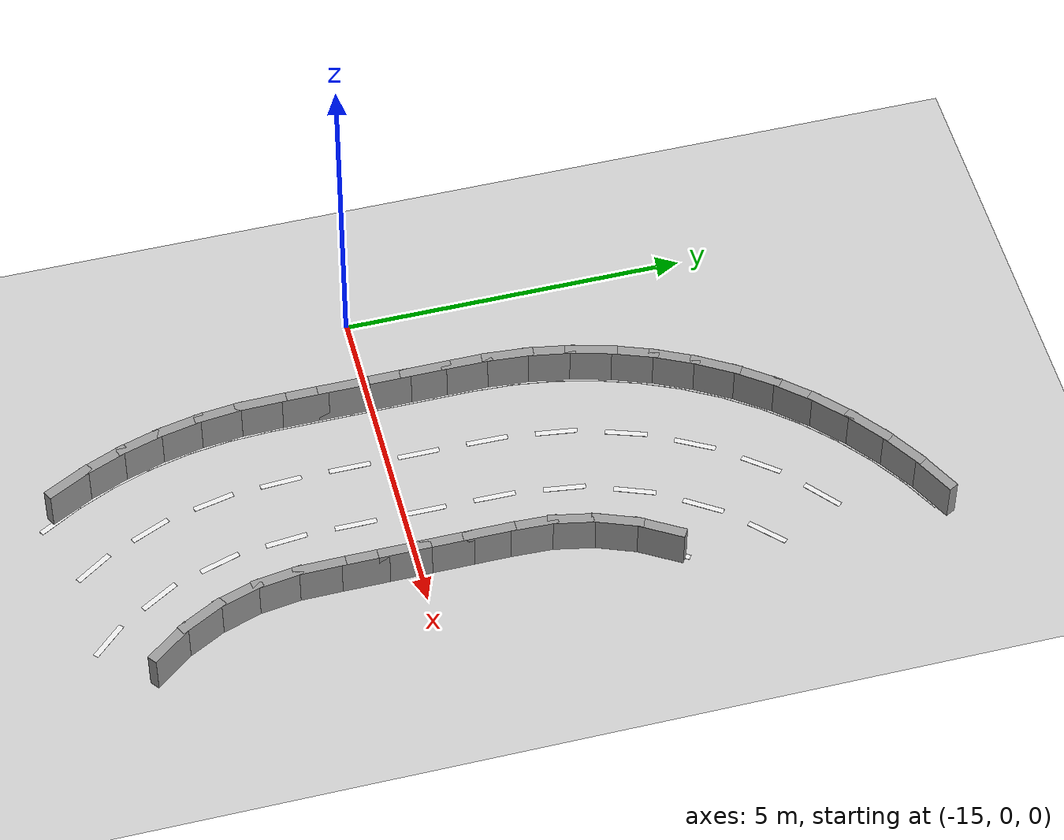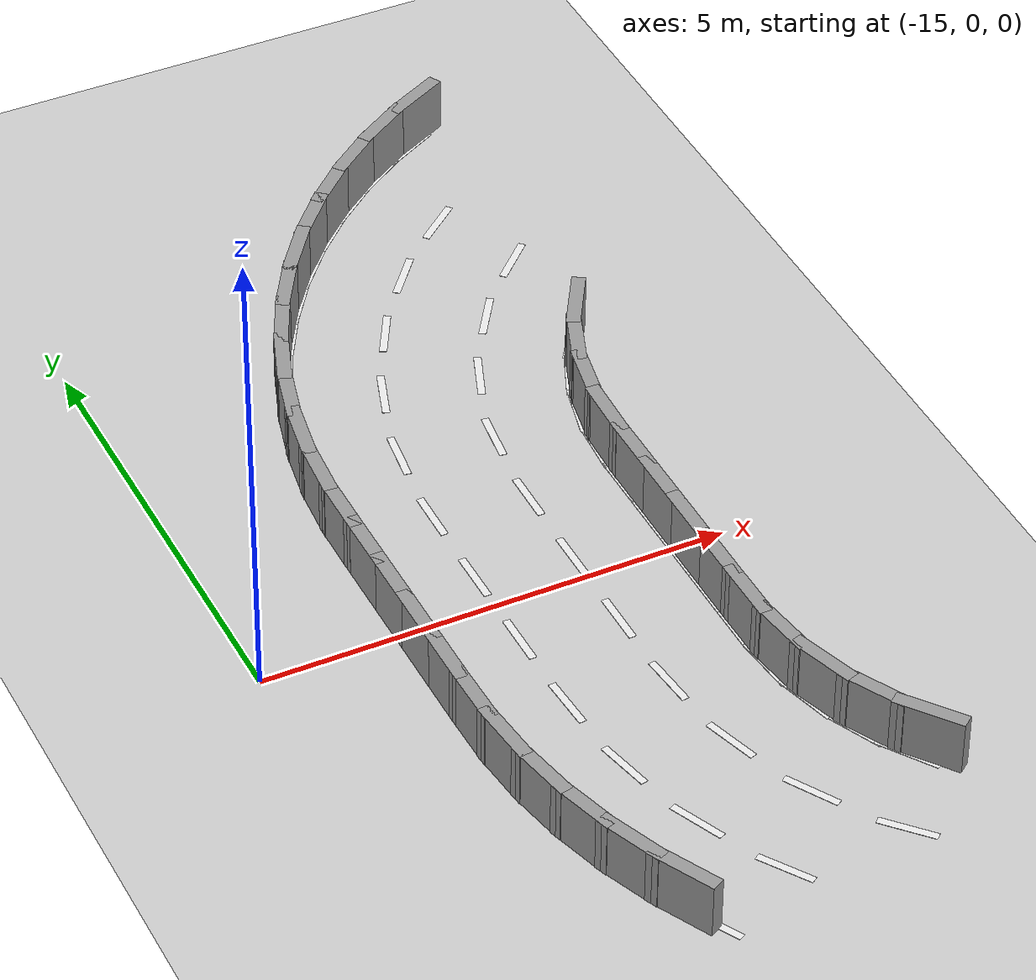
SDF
<sdf version="1.7">
 <world name="default">
  <model name="ground_plane">
   <static>1</static>
   <link name="link">
    <collision name="collision">
     <geometry><plane><normal>0 0 1</normal><size>100 100</size></plane></geometry>
     <surface><friction><ode><mu>100</mu><mu2>50</mu2></ode></friction></surface>
    </collision>
    <visual name="visual">
     <cast_shadows>0</cast_shadows>
     <geometry><plane><normal>0 0 1</normal><size>100 100</size></plane></geometry>
     <material>
      <script><uri>file://media/materials/scripts/gazebo.material</uri><name>Gazebo/Grey</name></script>
     </material>
    </visual>
   </link>
  </model>
  <model name="superspeedway">
   <link name="Wall_38">
    <collision name="Wall_38_Collision">
     <geometry><box><size>0.7493 0.1500 0.6000</size></box></geometry>
     <pose>0 0 0.3000 0 -0 0</pose>
    </collision>
    <visual name="Wall_38_Visual">
     <pose>0 0 0.3000 0 -0 0</pose>
     <geometry><box><size>0.7493 0.1500 0.6000</size></box></geometry>
     <material>
      <script><uri>file://media/materials/scripts/gazebo.material</uri><name>Gazebo/Grey</name></script>
      <ambient>1 1 1 1</ambient>
     </material>
    </visual>
    <pose>-9.9881 3.2976 0 0 -0 -2.11240</pose>
   </link>
   <link name="Wall_39">
    <collision name="Wall_39_Collision">
     <geometry><box><size>0.7493 0.1500 0.6000</size></box></geometry>
     <pose>0 0 0.3000 0 -0 0</pose>
    </collision>
    <visual name="Wall_39_Visual">
     <pose>0 0 0.3000 0 -0 0</pose>
     <geometry><box><size>0.7493 0.1500 0.6000</size></box></geometry>
     <material>
      <script><uri>file://media/materials/scripts/gazebo.material</uri><name>Gazebo/Grey</name></script>
      <ambient>1 1 1 1</ambient>
     </material>
    </visual>
    <pose>-10.2509 2.7616 0 0 -0 -1.94097</pose>
   </link>
   <link name="Wall_40">
    <collision name="Wall_40_Collision">
     <geometry><box><size>0.7493 0.1500 0.6000</size></box></geometry>
     <pose>0 0 0.3000 0 -0 0</pose>
    </collision>
    <visual name="Wall_40_Visual">
     <pose>0 0 0.3000 0 -0 0</pose>
     <geometry><box><size>0.7493 0.1500 0.6000</size></box></geometry>
     <material>
      <script><uri>file://media/materials/scripts/gazebo.material</uri><name>Gazebo/Grey</name></script>
      <ambient>1 1 1 1</ambient>
     </material>
    </visual>
    <pose>-10.4185 2.1885 0 0 -0 -1.76954</pose>
   </link>
   <link name="Wall_41">
    <collision name="Wall_41_Collision">
     <geometry><box><size>0.7496 0.1500 0.6000</size></box></geometry>
     <pose>0 0 0.3000 0 -0 0</pose>
    </collision>
    <visual name="Wall_41_Visual">
     <pose>0 0 0.3000 0 -0 0</pose>
     <geometry><box><size>0.7496 0.1500 0.6000</size></box></geometry>
     <material>
      <script><uri>file://media/materials/scripts/gazebo.material</uri><name>Gazebo/Grey</name></script>
      <ambient>1 1 1 1</ambient>
     </material>
    </visual>
    <pose>-10.4888 1.5952 0 0 -0 -1.60806</pose>
   </link>
   <link name="Wall_42">
    <collision name="Wall_42_Collision">
     <geometry><box><size>0.7500 0.1500 0.6000</size></box></geometry>
     <pose>0 0 0.3000 0 -0 0</pose>
    </collision>
    <visual name="Wall_42_Visual">
     <pose>0 0 0.3000 0 -0 0</pose>
     <geometry><box><size>0.7500 0.1500 0.6000</size></box></geometry>
     <material>
      <script><uri>file://media/materials/scripts/gazebo.material</uri><name>Gazebo/Grey</name></script>
      <ambient>1 1 1 1</ambient>
     </material>
    </visual>
    <pose>-10.5000 0.9956 0 0 -0 -1.57080</pose>
   </link>
   <link name="Wall_43">
    <collision name="Wall_43_Collision">
     <geometry><box><size>0.7500 0.1500 0.6000</size></box></geometry>
     <pose>0 0 0.3000 0 -0 0</pose>
    </collision>
    <visual name="Wall_43_Visual">
     <pose>0 0 0.3000 0 -0 0</pose>
     <geometry><box><size>0.7500 0.1500 0.6000</size></box></geometry>
     <material>
      <script><uri>file://media/materials/scripts/gazebo.material</uri><name>Gazebo/Grey</name></script>
      <ambient>1 1 1 1</ambient>
     </material>
    </visual>
    <pose>-10.5000 0.3956 0 0 -0 -1.57080</pose>
   </link>
   <link name="Wall_44">
    <collision name="Wall_44_Collision">
     <geometry><box><size>0.7500 0.1500 0.6000</size></box></geometry>
     <pose>0 0 0.3000 0 -0 0</pose>
    </collision>
    <visual name="Wall_44_Visual">
     <pose>0 0 0.3000 0 -0 0</pose>
     <geometry><box><size>0.7500 0.1500 0.6000</size></box></geometry>
     <material>
      <script><uri>file://media/materials/scripts/gazebo.material</uri><name>Gazebo/Grey</name></script>
      <ambient>1 1 1 1</ambient>
     </material>
    </visual>
    <pose>-10.5000 -0.2044 0 0 -0 -1.57080</pose>
   </link>
   <link name="Wall_45">
    <collision name="Wall_45_Collision">
     <geometry><box><size>0.7500 0.1500 0.6000</size></box></geometry>
     <pose>0 0 0.3000 0 -0 0</pose>
    </collision>
    <visual name="Wall_45_Visual">
     <pose>0 0 0.3000 0 -0 0</pose>
     <geometry><box><size>0.7500 0.1500 0.6000</size></box></geometry>
     <material>
      <script><uri>file://media/materials/scripts/gazebo.material</uri><name>Gazebo/Grey</name></script>
      <ambient>1 1 1 1</ambient>
     </material>
    </visual>
    <pose>-10.5000 -0.8044 0 0 -0 -1.57080</pose>
   </link>
   <link name="Wall_46">
    <collision name="Wall_46_Collision">
     <geometry><box><size>0.7499 0.1500 0.6000</size></box></geometry>
     <pose>0 0 0.3000 0 -0 0</pose>
    </collision>
    <visual name="Wall_46_Visual">
     <pose>0 0 0.3000 0 -0 0</pose>
     <geometry><box><size>0.7499 0.1500 0.6000</size></box></geometry>
     <material>
      <script><uri>file://media/materials/scripts/gazebo.material</uri><name>Gazebo/Grey</name></script>
      <ambient>1 1 1 1</ambient>
     </material>
    </visual>
    <pose>-10.4970 -1.4044 0 0 -0 -1.56085</pose>
   </link>
   <link name="Wall_47">
    <collision name="Wall_47_Collision">
     <geometry><box><size>0.7493 0.1500 0.6000</size></box></geometry>
     <pose>0 0 0.3000 0 -0 0</pose>
    </collision>
    <visual name="Wall_47_Visual">
     <pose>0 0 0.3000 0 -0 0</pose>
     <geometry><box><size>0.7493 0.1500 0.6000</size></box></geometry>
     <material>
      <script><uri>file://media/materials/scripts/gazebo.material</uri><name>Gazebo/Grey</name></script>
      <ambient>1 1 1 1</ambient>
     </material>
    </visual>
    <pose>-10.4510 -2.0008 0 0 -0 -1.42668</pose>
   </link>
   <link name="Wall_48">
    <collision name="Wall_48_Collision">
     <geometry><box><size>0.7493 0.1500 0.6000</size></box></geometry>
     <pose>0 0 0.3000 0 -0 0</pose>
    </collision>
    <visual name="Wall_48_Visual">
     <pose>0 0 0.3000 0 -0 0</pose>
     <geometry><box><size>0.7493 0.1500 0.6000</size></box></geometry>
     <material>
      <script><uri>file://media/materials/scripts/gazebo.material</uri><name>Gazebo/Grey</name></script>
      <ambient>1 1 1 1</ambient>
     </material>
    </visual>
    <pose>-10.3150 -2.5822 0 0 -0 -1.25525</pose>
   </link>
   <link name="Wall_49">
    <collision name="Wall_49_Collision">
     <geometry><box><size>0.7493 0.1500 0.6000</size></box></geometry>
     <pose>0 0 0.3000 0 -0 0</pose>
    </collision>
    <visual name="Wall_49_Visual">
     <pose>0 0 0.3000 0 -0 0</pose>
     <geometry><box><size>0.7493 0.1500 0.6000</size></box></geometry>
     <material>
      <script><uri>file://media/materials/scripts/gazebo.material</uri><name>Gazebo/Grey</name></script>
      <ambient>1 1 1 1</ambient>
     </material>
    </visual>
    <pose>-10.0818 -3.1318 0 0 -0 -1.08382</pose>
   </link>
   <link name="Wall_50">
    <collision name="Wall_50_Collision">
     <geometry><box><size>0.7493 0.1500 0.6000</size></box></geometry>
     <pose>0 0 0.3000 0 -0 0</pose>
    </collision>
    <visual name="Wall_50_Visual">
     <pose>0 0 0.3000 0 -0 0</pose>
     <geometry><box><size>0.7493 0.1500 0.6000</size></box></geometry>
     <material>
      <script><uri>file://media/materials/scripts/gazebo.material</uri><name>Gazebo/Grey</name></script>
      <ambient>1 1 1 1</ambient>
     </material>
    </visual>
    <pose>-9.7582 -3.6336 0 0 -0 -0.91239</pose>
   </link>
   <link name="Wall_138">
    <collision name="Wall_138_Collision">
     <geometry><box><size>0.7498 0.1500 0.6000</size></box></geometry>
     <pose>0 0 0.3000 0 -0 0</pose>
    </collision>
    <visual name="Wall_138_Visual">
     <pose>0 0 0.3000 0 -0 0</pose>
     <geometry><box><size>0.7498 0.1500 0.6000</size></box></geometry>
     <material>
      <script><uri>file://media/materials/scripts/gazebo.material</uri><name>Gazebo/Grey</name></script>
      <ambient>1 1 1 1</ambient>
     </material>
    </visual>
    <pose>-9.9716 7.2732 0 0 -0 -2.66624</pose>
   </link>
   <link name="Wall_139">
    <collision name="Wall_139_Collision">
     <geometry><box><size>0.7498 0.1500 0.6000</size></box></geometry>
     <pose>0 0 0.3000 0 -0 0</pose>
    </collision>
    <visual name="Wall_139_Visual">
     <pose>0 0 0.3000 0 -0 0</pose>
     <geometry><box><size>0.7498 0.1500 0.6000</size></box></geometry>
     <material>
      <script><uri>file://media/materials/scripts/gazebo.material</uri><name>Gazebo/Grey</name></script>
      <ambient>1 1 1 1</ambient>
     </material>
    </visual>
    <pose>-10.4911 6.9747 0 0 -0 -2.57391</pose>
   </link>
   <link name="Wall_140">
    <collision name="Wall_140_Collision">
     <geometry><box><size>0.7498 0.1500 0.6000</size></box></geometry>
     <pose>0 0 0.3000 0 -0 0</pose>
    </collision>
    <visual name="Wall_140_Visual">
     <pose>0 0 0.3000 0 -0 0</pose>
     <geometry><box><size>0.7498 0.1500 0.6000</size></box></geometry>
     <material>
      <script><uri>file://media/materials/scripts/gazebo.material</uri><name>Gazebo/Grey</name></script>
      <ambient>1 1 1 1</ambient>
     </material>
    </visual>
    <pose>-10.9809 6.6296 0 0 -0 -2.48163</pose>
   </link>
   <link name="Wall_141">
    <collision name="Wall_141_Collision">
     <geometry><box><size>0.7498 0.1500 0.6000</size></box></geometry>
     <pose>0 0 0.3000 0 -0 0</pose>
    </collision>
    <visual name="Wall_141_Visual">
     <pose>0 0 0.3000 0 -0 0</pose>
     <geometry><box><size>0.7498 0.1500 0.6000</size></box></geometry>
     <material>
      <script><uri>file://media/materials/scripts/gazebo.material</uri><name>Gazebo/Grey</name></script>
      <ambient>1 1 1 1</ambient>
     </material>
    </visual>
    <pose>-11.4368 6.2408 0 0 -0 -2.38929</pose>
   </link>
   <link name="Wall_142">
    <collision name="Wall_142_Collision">
     <geometry><box><size>0.7498 0.1500 0.6000</size></box></geometry>
     <pose>0 0 0.3000 0 -0 0</pose>
    </collision>
    <visual name="Wall_142_Visual">
     <pose>0 0 0.3000 0 -0 0</pose>
     <geometry><box><size>0.7498 0.1500 0.6000</size></box></geometry>
     <material>
      <script><uri>file://media/materials/scripts/gazebo.material</uri><name>Gazebo/Grey</name></script>
      <ambient>1 1 1 1</ambient>
     </material>
    </visual>
    <pose>-11.8549 5.8116 0 0 -0 -2.29702</pose>
   </link>
   <link name="Wall_143">
    <collision name="Wall_143_Collision">
     <geometry><box><size>0.7498 0.1500 0.6000</size></box></geometry>
     <pose>0 0 0.3000 0 -0 0</pose>
    </collision>
    <visual name="Wall_143_Visual">
     <pose>0 0 0.3000 0 -0 0</pose>
     <geometry><box><size>0.7498 0.1500 0.6000</size></box></geometry>
     <material>
      <script><uri>file://media/materials/scripts/gazebo.material</uri><name>Gazebo/Grey</name></script>
      <ambient>1 1 1 1</ambient>
     </material>
    </visual>
    <pose>-12.2316 5.3458 0 0 -0 -2.20467</pose>
   </link>
   <link name="Wall_144">
    <collision name="Wall_144_Collision">
     <geometry><box><size>0.7498 0.1500 0.6000</size></box></geometry>
     <pose>0 0 0.3000 0 -0 0</pose>
    </collision>
    <visual name="Wall_144_Visual">
     <pose>0 0 0.3000 0 -0 0</pose>
     <geometry><box><size>0.7498 0.1500 0.6000</size></box></geometry>
     <material>
      <script><uri>file://media/materials/scripts/gazebo.material</uri><name>Gazebo/Grey</name></script>
      <ambient>1 1 1 1</ambient>
     </material>
    </visual>
    <pose>-12.5639 4.8472 0 0 -0 -2.11240</pose>
   </link>
   <link name="Wall_145">
    <collision name="Wall_145_Collision">
     <geometry><box><size>0.7498 0.1500 0.6000</size></box></geometry>
     <pose>0 0 0.3000 0 -0 0</pose>
    </collision>
    <visual name="Wall_145_Visual">
     <pose>0 0 0.3000 0 -0 0</pose>
     <geometry><box><size>0.7498 0.1500 0.6000</size></box></geometry>
     <material>
      <script><uri>file://media/materials/scripts/gazebo.material</uri><name>Gazebo/Grey</name></script>
      <ambient>1 1 1 1</ambient>
     </material>
    </visual>
    <pose>-12.8487 4.3200 0 0 -0 -2.02006</pose>
   </link>
   <link name="Wall_146">
    <collision name="Wall_146_Collision">
     <geometry><box><size>0.7498 0.1500 0.6000</size></box></geometry>
     <pose>0 0 0.3000 0 -0 0</pose>
    </collision>
    <visual name="Wall_146_Visual">
     <pose>0 0 0.3000 0 -0 0</pose>
     <geometry><box><size>0.7498 0.1500 0.6000</size></box></geometry>
     <material>
      <script><uri>file://media/materials/scripts/gazebo.material</uri><name>Gazebo/Grey</name></script>
      <ambient>1 1 1 1</ambient>
     </material>
    </visual>
    <pose>-13.0837 3.7689 0 0 -0 -1.92779</pose>
   </link>
   <link name="Wall_147">
    <collision name="Wall_147_Collision">
     <geometry><box><size>0.7498 0.1500 0.6000</size></box></geometry>
     <pose>0 0 0.3000 0 -0 0</pose>
    </collision>
    <visual name="Wall_147_Visual">
     <pose>0 0 0.3000 0 -0 0</pose>
     <geometry><box><size>0.7498 0.1500 0.6000</size></box></geometry>
     <material>
      <script><uri>file://media/materials/scripts/gazebo.material</uri><name>Gazebo/Grey</name></script>
      <ambient>1 1 1 1</ambient>
     </material>
    </visual>
    <pose>-13.2670 3.1985 0 0 -0 -1.83544</pose>
   </link>
   <link name="Wall_148">
    <collision name="Wall_148_Collision">
     <geometry><box><size>0.7498 0.1500 0.6000</size></box></geometry>
     <pose>0 0 0.3000 0 -0 0</pose>
    </collision>
    <visual name="Wall_148_Visual">
     <pose>0 0 0.3000 0 -0 0</pose>
     <geometry><box><size>0.7498 0.1500 0.6000</size></box></geometry>
     <material>
      <script><uri>file://media/materials/scripts/gazebo.material</uri><name>Gazebo/Grey</name></script>
      <ambient>1 1 1 1</ambient>
     </material>
    </visual>
    <pose>-13.3969 2.6136 0 0 -0 -1.74317</pose>
   </link>
   <link name="Wall_149">
    <collision name="Wall_149_Collision">
     <geometry><box><size>0.7498 0.1500 0.6000</size></box></geometry>
     <pose>0 0 0.3000 0 -0 0</pose>
    </collision>
    <visual name="Wall_149_Visual">
     <pose>0 0 0.3000 0 -0 0</pose>
     <geometry><box><size>0.7498 0.1500 0.6000</size></box></geometry>
     <material>
      <script><uri>file://media/materials/scripts/gazebo.material</uri><name>Gazebo/Grey</name></script>
      <ambient>1 1 1 1</ambient>
     </material>
    </visual>
    <pose>-13.4723 2.0192 0 0 -0 -1.65082</pose>
   </link>
   <link name="Wall_150">
    <collision name="Wall_150_Collision">
     <geometry><box><size>0.7500 0.1500 0.6000</size></box></geometry>
     <pose>0 0 0.3000 0 -0 0</pose>
    </collision>
    <visual name="Wall_150_Visual">
     <pose>0 0 0.3000 0 -0 0</pose>
     <geometry><box><size>0.7500 0.1500 0.6000</size></box></geometry>
     <material>
      <script><uri>file://media/materials/scripts/gazebo.material</uri><name>Gazebo/Grey</name></script>
      <ambient>1 1 1 1</ambient>
     </material>
    </visual>
    <pose>-13.4981 1.4203 0 0 -0 -1.57705</pose>
   </link>
   <link name="Wall_151">
    <collision name="Wall_151_Collision">
     <geometry><box><size>0.7500 0.1500 0.6000</size></box></geometry>
     <pose>0 0 0.3000 0 -0 0</pose>
    </collision>
    <visual name="Wall_151_Visual">
     <pose>0 0 0.3000 0 -0 0</pose>
     <geometry><box><size>0.7500 0.1500 0.6000</size></box></geometry>
     <material>
      <script><uri>file://media/materials/scripts/gazebo.material</uri><name>Gazebo/Grey</name></script>
      <ambient>1 1 1 1</ambient>
     </material>
    </visual>
    <pose>-13.5000 0.8203 0 0 -0 -1.57080</pose>
   </link>
   <link name="Wall_152">
    <collision name="Wall_152_Collision">
     <geometry><box><size>0.7500 0.1500 0.6000</size></box></geometry>
     <pose>0 0 0.3000 0 -0 0</pose>
    </collision>
    <visual name="Wall_152_Visual">
     <pose>0 0 0.3000 0 -0 0</pose>
     <geometry><box><size>0.7500 0.1500 0.6000</size></box></geometry>
     <material>
      <script><uri>file://media/materials/scripts/gazebo.material</uri><name>Gazebo/Grey</name></script>
      <ambient>1 1 1 1</ambient>
     </material>
    </visual>
    <pose>-13.5000 0.2203 0 0 -0 -1.57080</pose>
   </link>
   <link name="Wall_153">
    <collision name="Wall_153_Collision">
     <geometry><box><size>0.7500 0.1500 0.6000</size></box></geometry>
     <pose>0 0 0.3000 0 -0 0</pose>
    </collision>
    <visual name="Wall_153_Visual">
     <pose>0 0 0.3000 0 -0 0</pose>
     <geometry><box><size>0.7500 0.1500 0.6000</size></box></geometry>
     <material>
      <script><uri>file://media/materials/scripts/gazebo.material</uri><name>Gazebo/Grey</name></script>
      <ambient>1 1 1 1</ambient>
     </material>
    </visual>
    <pose>-13.5000 -0.3797 0 0 -0 -1.57080</pose>
   </link>
   <link name="Wall_154">
    <collision name="Wall_154_Collision">
     <geometry><box><size>0.7500 0.1500 0.6000</size></box></geometry>
     <pose>0 0 0.3000 0 -0 0</pose>
    </collision>
    <visual name="Wall_154_Visual">
     <pose>0 0 0.3000 0 -0 0</pose>
     <geometry><box><size>0.7500 0.1500 0.6000</size></box></geometry>
     <material>
      <script><uri>file://media/materials/scripts/gazebo.material</uri><name>Gazebo/Grey</name></script>
      <ambient>1 1 1 1</ambient>
     </material>
    </visual>
    <pose>-13.5000 -0.9797 0 0 -0 -1.57080</pose>
   </link>
   <link name="Wall_155">
    <collision name="Wall_155_Collision">
     <geometry><box><size>0.7499 0.1500 0.6000</size></box></geometry>
     <pose>0 0 0.3000 0 -0 0</pose>
    </collision>
    <visual name="Wall_155_Visual">
     <pose>0 0 0.3000 0 -0 0</pose>
     <geometry><box><size>0.7499 0.1500 0.6000</size></box></geometry>
     <material>
      <script><uri>file://media/materials/scripts/gazebo.material</uri><name>Gazebo/Grey</name></script>
      <ambient>1 1 1 1</ambient>
     </material>
    </visual>
    <pose>-13.4945 -1.5796 0 0 -0 -1.55231</pose>
   </link>
   <link name="Wall_156">
    <collision name="Wall_156_Collision">
     <geometry><box><size>0.7498 0.1500 0.6000</size></box></geometry>
     <pose>0 0 0.3000 0 -0 0</pose>
    </collision>
    <visual name="Wall_156_Visual">
     <pose>0 0 0.3000 0 -0 0</pose>
     <geometry><box><size>0.7498 0.1500 0.6000</size></box></geometry>
     <material>
      <script><uri>file://media/materials/scripts/gazebo.material</uri><name>Gazebo/Grey</name></script>
      <ambient>1 1 1 1</ambient>
     </material>
    </visual>
    <pose>-13.4576 -2.1777 0 0 -0 -1.46620</pose>
   </link>
   <link name="Wall_157">
    <collision name="Wall_157_Collision">
     <geometry><box><size>0.7498 0.1500 0.6000</size></box></geometry>
     <pose>0 0 0.3000 0 -0 0</pose>
    </collision>
    <visual name="Wall_157_Visual">
     <pose>0 0 0.3000 0 -0 0</pose>
     <geometry><box><size>0.7498 0.1500 0.6000</size></box></geometry>
     <material>
      <script><uri>file://media/materials/scripts/gazebo.material</uri><name>Gazebo/Grey</name></script>
      <ambient>1 1 1 1</ambient>
     </material>
    </visual>
    <pose>-13.3676 -2.7701 0 0 -0 -1.37395</pose>
   </link>
   <link name="Wall_158">
    <collision name="Wall_158_Collision">
     <geometry><box><size>0.7498 0.1500 0.6000</size></box></geometry>
     <pose>0 0 0.3000 0 -0 0</pose>
    </collision>
    <visual name="Wall_158_Visual">
     <pose>0 0 0.3000 0 -0 0</pose>
     <geometry><box><size>0.7498 0.1500 0.6000</size></box></geometry>
     <material>
      <script><uri>file://media/materials/scripts/gazebo.material</uri><name>Gazebo/Grey</name></script>
      <ambient>1 1 1 1</ambient>
     </material>
    </visual>
    <pose>-13.2235 -3.3516 0 0 -0 -1.28159</pose>
   </link>
   <link name="Wall_159">
    <collision name="Wall_159_Collision">
     <geometry><box><size>0.7498 0.1500 0.6000</size></box></geometry>
     <pose>0 0 0.3000 0 -0 0</pose>
    </collision>
    <visual name="Wall_159_Visual">
     <pose>0 0 0.3000 0 -0 0</pose>
     <geometry><box><size>0.7498 0.1500 0.6000</size></box></geometry>
     <material>
      <script><uri>file://media/materials/scripts/gazebo.material</uri><name>Gazebo/Grey</name></script>
      <ambient>1 1 1 1</ambient>
     </material>
    </visual>
    <pose>-13.0263 -3.9174 0 0 -0 -1.18933</pose>
   </link>
   <link name="Wall_160">
    <collision name="Wall_160_Collision">
     <geometry><box><size>0.7498 0.1500 0.6000</size></box></geometry>
     <pose>0 0 0.3000 0 -0 0</pose>
    </collision>
    <visual name="Wall_160_Visual">
     <pose>0 0 0.3000 0 -0 0</pose>
     <geometry><box><size>0.7498 0.1500 0.6000</size></box></geometry>
     <material>
      <script><uri>file://media/materials/scripts/gazebo.material</uri><name>Gazebo/Grey</name></script>
      <ambient>1 1 1 1</ambient>
     </material>
    </visual>
    <pose>-12.7778 -4.4626 0 0 -0 -1.09697</pose>
   </link>
   <link name="Paint_38">
    <visual name="Paint_38_Visual">
     <pose>0 0 0.0020 0 -0 0</pose>
     <geometry><box><size>0.6798 0.0800 0.0040</size></box></geometry>
     <material>
      <script><uri>file://media/materials/scripts/gazebo.material</uri><name>Gazebo/White</name></script>
      <ambient>1 1 1 1</ambient>
     </material>
    </visual>
    <pose>-9.9836 3.4175 0 0 -0 -2.15319</pose>
   </link>
   <link name="Paint_39">
    <visual name="Paint_39_Visual">
     <pose>0 0 0.0020 0 -0 0</pose>
     <geometry><box><size>0.6798 0.0800 0.0040</size></box></geometry>
     <material>
      <script><uri>file://media/materials/scripts/gazebo.material</uri><name>Gazebo/White</name></script>
      <ambient>1 1 1 1</ambient>
     </material>
    </visual>
    <pose>-10.2632 2.8892 0 0 -0 -1.98446</pose>
   </link>
   <link name="Paint_40">
    <visual name="Paint_40_Visual">
     <pose>0 0 0.0020 0 -0 0</pose>
     <geometry><box><size>0.6798 0.0800 0.0040</size></box></geometry>
     <material>
      <script><uri>file://media/materials/scripts/gazebo.material</uri><name>Gazebo/White</name></script>
      <ambient>1 1 1 1</ambient>
     </material>
    </visual>
    <pose>-10.4501 2.3214 0 0 -0 -1.81571</pose>
   </link>
   <link name="Paint_41">
    <visual name="Paint_41_Visual">
     <pose>0 0 0.0020 0 -0 0</pose>
     <geometry><box><size>0.6800 0.0800 0.0040</size></box></geometry>
     <material>
      <script><uri>file://media/materials/scripts/gazebo.material</uri><name>Gazebo/White</name></script>
      <ambient>1 1 1 1</ambient>
     </material>
    </visual>
    <pose>-10.5397 1.7303 0 0 -0 -1.64895</pose>
   </link>
   <link name="Paint_42">
    <visual name="Paint_42_Visual">
     <pose>0 0 0.0020 0 -0 0</pose>
     <geometry><box><size>0.6800 0.0800 0.0040</size></box></geometry>
     <material>
      <script><uri>file://media/materials/scripts/gazebo.material</uri><name>Gazebo/White</name></script>
      <ambient>1 1 1 1</ambient>
     </material>
    </visual>
    <pose>-10.5600 1.1311 0 0 -0 -1.57080</pose>
   </link>
   <link name="Paint_43">
    <visual name="Paint_43_Visual">
     <pose>0 0 0.0020 0 -0 0</pose>
     <geometry><box><size>0.6800 0.0800 0.0040</size></box></geometry>
     <material>
      <script><uri>file://media/materials/scripts/gazebo.material</uri><name>Gazebo/White</name></script>
      <ambient>1 1 1 1</ambient>
     </material>
    </visual>
    <pose>-10.5600 0.5311 0 0 -0 -1.57080</pose>
   </link>
   <link name="Paint_44">
    <visual name="Paint_44_Visual">
     <pose>0 0 0.0020 0 -0 0</pose>
     <geometry><box><size>0.6800 0.0800 0.0040</size></box></geometry>
     <material>
      <script><uri>file://media/materials/scripts/gazebo.material</uri><name>Gazebo/White</name></script>
      <ambient>1 1 1 1</ambient>
     </material>
    </visual>
    <pose>-10.5600 -0.0689 0 0 -0 -1.57080</pose>
   </link>
   <link name="Paint_45">
    <visual name="Paint_45_Visual">
     <pose>0 0 0.0020 0 -0 0</pose>
     <geometry><box><size>0.6800 0.0800 0.0040</size></box></geometry>
     <material>
      <script><uri>file://media/materials/scripts/gazebo.material</uri><name>Gazebo/White</name></script>
      <ambient>1 1 1 1</ambient>
     </material>
    </visual>
    <pose>-10.5600 -0.6689 0 0 -0 -1.57080</pose>
   </link>
   <link name="Paint_46">
    <visual name="Paint_46_Visual">
     <pose>0 0 0.0020 0 -0 0</pose>
     <geometry><box><size>0.6800 0.0800 0.0040</size></box></geometry>
     <material>
      <script><uri>file://media/materials/scripts/gazebo.material</uri><name>Gazebo/White</name></script>
      <ambient>1 1 1 1</ambient>
     </material>
    </visual>
    <pose>-10.5593 -1.2688 0 0 -0 -1.56883</pose>
   </link>
   <link name="Paint_47">
    <visual name="Paint_47_Visual">
     <pose>0 0 0.0020 0 -0 0</pose>
     <geometry><box><size>0.6798 0.0800 0.0040</size></box></geometry>
     <material>
      <script><uri>file://media/materials/scripts/gazebo.material</uri><name>Gazebo/White</name></script>
      <ambient>1 1 1 1</ambient>
     </material>
    </visual>
    <pose>-10.5274 -1.8673 0 0 -0 -1.47822</pose>
   </link>
   <link name="Paint_48">
    <visual name="Paint_48_Visual">
     <pose>0 0 0.0020 0 -0 0</pose>
     <geometry><box><size>0.6798 0.0800 0.0040</size></box></geometry>
     <material>
      <script><uri>file://media/materials/scripts/gazebo.material</uri><name>Gazebo/White</name></script>
      <ambient>1 1 1 1</ambient>
     </material>
    </visual>
    <pose>-10.4156 -2.4544 0 0 -0 -1.30951</pose>
   </link>
   <link name="Paint_49">
    <visual name="Paint_49_Visual">
     <pose>0 0 0.0020 0 -0 0</pose>
     <geometry><box><size>0.6798 0.0800 0.0040</size></box></geometry>
     <material>
      <script><uri>file://media/materials/scripts/gazebo.material</uri><name>Gazebo/White</name></script>
      <ambient>1 1 1 1</ambient>
     </material>
    </visual>
    <pose>-10.2067 -3.0144 0 0 -0 -1.14075</pose>
   </link>
   <link name="Paint_50">
    <visual name="Paint_50_Visual">
     <pose>0 0 0.0020 0 -0 0</pose>
     <geometry><box><size>0.6798 0.0800 0.0040</size></box></geometry>
     <material>
      <script><uri>file://media/materials/scripts/gazebo.material</uri><name>Gazebo/White</name></script>
      <ambient>1 1 1 1</ambient>
     </material>
    </visual>
    <pose>-9.9068 -3.5314 0 0 -0 -0.97203</pose>
   </link>
   <link name="Paint_139">
    <visual name="Paint_139_Visual">
     <pose>0 0 0.0020 0 -0 0</pose>
     <geometry><box><size>0.6800 0.0800 0.0040</size></box></geometry>
     <material>
      <script><uri>file://media/materials/scripts/gazebo.material</uri><name>Gazebo/White</name></script>
      <ambient>1 1 1 1</ambient>
     </material>
    </visual>
    <pose>-10.0920 7.1411 0 0 -0 -2.64641</pose>
   </link>
   <link name="Paint_140">
    <visual name="Paint_140_Visual">
     <pose>0 0 0.0020 0 -0 0</pose>
     <geometry><box><size>0.6800 0.0800 0.0040</size></box></geometry>
     <material>
      <script><uri>file://media/materials/scripts/gazebo.material</uri><name>Gazebo/White</name></script>
      <ambient>1 1 1 1</ambient>
     </material>
    </visual>
    <pose>-10.6035 6.8288 0 0 -0 -2.55321</pose>
   </link>
   <link name="Paint_141">
    <visual name="Paint_141_Visual">
     <pose>0 0 0.0020 0 -0 0</pose>
     <geometry><box><size>0.6800 0.0800 0.0040</size></box></geometry>
     <material>
      <script><uri>file://media/materials/scripts/gazebo.material</uri><name>Gazebo/White</name></script>
      <ambient>1 1 1 1</ambient>
     </material>
    </visual>
    <pose>-11.0838 6.4703 0 0 -0 -2.45998</pose>
   </link>
   <link name="Paint_142">
    <visual name="Paint_142_Visual">
     <pose>0 0 0.0020 0 -0 0</pose>
     <geometry><box><size>0.6800 0.0800 0.0040</size></box></geometry>
     <material>
      <script><uri>file://media/materials/scripts/gazebo.material</uri><name>Gazebo/White</name></script>
      <ambient>1 1 1 1</ambient>
     </material>
    </visual>
    <pose>-11.5287 6.0687 0 0 -0 -2.36680</pose>
   </link>
   <link name="Paint_143">
    <visual name="Paint_143_Visual">
     <pose>0 0 0.0020 0 -0 0</pose>
     <geometry><box><size>0.6800 0.0800 0.0040</size></box></geometry>
     <material>
      <script><uri>file://media/materials/scripts/gazebo.material</uri><name>Gazebo/White</name></script>
      <ambient>1 1 1 1</ambient>
     </material>
    </visual>
    <pose>-11.9342 5.6274 0 0 -0 -2.27362</pose>
   </link>
   <link name="Paint_144">
    <visual name="Paint_144_Visual">
     <pose>0 0 0.0020 0 -0 0</pose>
     <geometry><box><size>0.6800 0.0800 0.0040</size></box></geometry>
     <material>
      <script><uri>file://media/materials/scripts/gazebo.material</uri><name>Gazebo/White</name></script>
      <ambient>1 1 1 1</ambient>
     </material>
    </visual>
    <pose>-12.2969 5.1503 0 0 -0 -2.18037</pose>
   </link>
   <link name="Paint_145">
    <visual name="Paint_145_Visual">
     <pose>0 0 0.0020 0 -0 0</pose>
     <geometry><box><size>0.6800 0.0800 0.0040</size></box></geometry>
     <material>
      <script><uri>file://media/materials/scripts/gazebo.material</uri><name>Gazebo/White</name></script>
      <ambient>1 1 1 1</ambient>
     </material>
    </visual>
    <pose>-12.6136 4.6414 0 0 -0 -2.08719</pose>
   </link>
   <link name="Paint_146">
    <visual name="Paint_146_Visual">
     <pose>0 0 0.0020 0 -0 0</pose>
     <geometry><box><size>0.6800 0.0800 0.0040</size></box></geometry>
     <material>
      <script><uri>file://media/materials/scripts/gazebo.material</uri><name>Gazebo/White</name></script>
      <ambient>1 1 1 1</ambient>
     </material>
    </visual>
    <pose>-12.8816 4.1054 0 0 -0 -1.99400</pose>
   </link>
   <link name="Paint_147">
    <visual name="Paint_147_Visual">
     <pose>0 0 0.0020 0 -0 0</pose>
     <geometry><box><size>0.6800 0.0800 0.0040</size></box></geometry>
     <material>
      <script><uri>file://media/materials/scripts/gazebo.material</uri><name>Gazebo/White</name></script>
      <ambient>1 1 1 1</ambient>
     </material>
    </visual>
    <pose>-13.0985 3.5467 0 0 -0 -1.90078</pose>
   </link>
   <link name="Paint_148">
    <visual name="Paint_148_Visual">
     <pose>0 0 0.0020 0 -0 0</pose>
     <geometry><box><size>0.6800 0.0800 0.0040</size></box></geometry>
     <material>
      <script><uri>file://media/materials/scripts/gazebo.material</uri><name>Gazebo/White</name></script>
      <ambient>1 1 1 1</ambient>
     </material>
    </visual>
    <pose>-13.2625 2.9702 0 0 -0 -1.80758</pose>
   </link>
   <link name="Paint_149">
    <visual name="Paint_149_Visual">
     <pose>0 0 0.0020 0 -0 0</pose>
     <geometry><box><size>0.6800 0.0800 0.0040</size></box></geometry>
     <material>
      <script><uri>file://media/materials/scripts/gazebo.material</uri><name>Gazebo/White</name></script>
      <ambient>1 1 1 1</ambient>
     </material>
    </visual>
    <pose>-13.3722 2.3810 0 0 -0 -1.71439</pose>
   </link>
   <link name="Paint_150">
    <visual name="Paint_150_Visual">
     <pose>0 0 0.0020 0 -0 0</pose>
     <geometry><box><size>0.6800 0.0800 0.0040</size></box></geometry>
     <material>
      <script><uri>file://media/materials/scripts/gazebo.material</uri><name>Gazebo/White</name></script>
      <ambient>1 1 1 1</ambient>
     </material>
    </visual>
    <pose>-13.4267 1.7841 0 0 -0 -1.62170</pose>
   </link>
   <link name="Paint_151">
    <visual name="Paint_151_Visual">
     <pose>0 0 0.0020 0 -0 0</pose>
     <geometry><box><size>0.6800 0.0800 0.0040</size></box></geometry>
     <material>
      <script><uri>file://media/materials/scripts/gazebo.material</uri><name>Gazebo/White</name></script>
      <ambient>1 1 1 1</ambient>
     </material>
    </visual>
    <pose>-13.4400 1.1845 0 0 -0 -1.57094</pose>
   </link>
   <link name="Paint_152">
    <visual name="Paint_152_Visual">
     <pose>0 0 0.0020 0 -0 0</pose>
     <geometry><box><size>0.6800 0.0800 0.0040</size></box></geometry>
     <material>
      <script><uri>file://media/materials/scripts/gazebo.material</uri><name>Gazebo/White</name></script>
      <ambient>1 1 1 1</ambient>
     </material>
    </visual>
    <pose>-13.4400 0.5845 0 0 -0 -1.57080</pose>
   </link>
   <link name="Paint_153">
    <visual name="Paint_153_Visual">
     <pose>0 0 0.0020 0 -0 0</pose>
     <geometry><box><size>0.6800 0.0800 0.0040</size></box></geometry>
     <material>
      <script><uri>file://media/materials/scripts/gazebo.material</uri><name>Gazebo/White</name></script>
      <ambient>1 1 1 1</ambient>
     </material>
    </visual>
    <pose>-13.4400 -0.0155 0 0 -0 -1.57080</pose>
   </link>
   <link name="Paint_154">
    <visual name="Paint_154_Visual">
     <pose>0 0 0.0020 0 -0 0</pose>
     <geometry><box><size>0.6800 0.0800 0.0040</size></box></geometry>
     <material>
      <script><uri>file://media/materials/scripts/gazebo.material</uri><name>Gazebo/White</name></script>
      <ambient>1 1 1 1</ambient>
     </material>
    </visual>
    <pose>-13.4400 -0.6155 0 0 -0 -1.57080</pose>
   </link>
   <link name="Paint_155">
    <visual name="Paint_155_Visual">
     <pose>0 0 0.0020 0 -0 0</pose>
     <geometry><box><size>0.6800 0.0800 0.0040</size></box></geometry>
     <material>
      <script><uri>file://media/materials/scripts/gazebo.material</uri><name>Gazebo/White</name></script>
      <ambient>1 1 1 1</ambient>
     </material>
    </visual>
    <pose>-13.4398 -1.2155 0 0 -0 -1.57029</pose>
   </link>
   <link name="Paint_156">
    <visual name="Paint_156_Visual">
     <pose>0 0 0.0020 0 -0 0</pose>
     <geometry><box><size>0.6800 0.0800 0.0040</size></box></geometry>
     <material>
      <script><uri>file://media/materials/scripts/gazebo.material</uri><name>Gazebo/White</name></script>
      <ambient>1 1 1 1</ambient>
     </material>
    </visual>
    <pose>-13.4251 -1.8152 0 0 -0 -1.52783</pose>
   </link>
   <link name="Paint_157">
    <visual name="Paint_157_Visual">
     <pose>0 0 0.0020 0 -0 0</pose>
     <geometry><box><size>0.6800 0.0800 0.0040</size></box></geometry>
     <material>
      <script><uri>file://media/materials/scripts/gazebo.material</uri><name>Gazebo/White</name></script>
      <ambient>1 1 1 1</ambient>
     </material>
    </visual>
    <pose>-13.3678 -2.4118 0 0 -0 -1.43478</pose>
   </link>
   <link name="Paint_158">
    <visual name="Paint_158_Visual">
     <pose>0 0 0.0020 0 -0 0</pose>
     <geometry><box><size>0.6800 0.0800 0.0040</size></box></geometry>
     <material>
      <script><uri>file://media/materials/scripts/gazebo.material</uri><name>Gazebo/White</name></script>
      <ambient>1 1 1 1</ambient>
     </material>
    </visual>
    <pose>-13.2553 -3.0004 0 0 -0 -1.34160</pose>
   </link>
   <link name="Paint_159">
    <visual name="Paint_159_Visual">
     <pose>0 0 0.0020 0 -0 0</pose>
     <geometry><box><size>0.6800 0.0800 0.0040</size></box></geometry>
     <material>
      <script><uri>file://media/materials/scripts/gazebo.material</uri><name>Gazebo/White</name></script>
      <ambient>1 1 1 1</ambient>
     </material>
    </visual>
    <pose>-13.0885 -3.5761 0 0 -0 -1.24836</pose>
   </link>
   <link name="Paint_160">
    <visual name="Paint_160_Visual">
     <pose>0 0 0.0020 0 -0 0</pose>
     <geometry><box><size>0.6800 0.0800 0.0040</size></box></geometry>
     <material>
      <script><uri>file://media/materials/scripts/gazebo.material</uri><name>Gazebo/White</name></script>
      <ambient>1 1 1 1</ambient>
     </material>
    </visual>
    <pose>-12.8689 -4.1337 0 0 -0 -1.15517</pose>
   </link>
   <link name="Paint_161">
    <visual name="Paint_161_Visual">
     <pose>0 0 0.0020 0 -0 0</pose>
     <geometry><box><size>0.6800 0.0800 0.0040</size></box></geometry>
     <material>
      <script><uri>file://media/materials/scripts/gazebo.material</uri><name>Gazebo/White</name></script>
      <ambient>1 1 1 1</ambient>
     </material>
    </visual>
    <pose>-12.5983 -4.6685 0 0 -0 -1.06199</pose>
   </link>
   <link name="Paint_243">
    <visual name="Paint_243_Visual">
     <pose>0 0 0.0020 0 -0 0</pose>
     <geometry><box><size>0.6000 0.0800 0.0040</size></box></geometry>
     <material>
      <script><uri>file://media/materials/scripts/gazebo.material</uri><name>Gazebo/White</name></script>
      <ambient>1 1 1 1</ambient>
     </material>
    </visual>
    <pose>-9.9489 4.8642 0 0 -0 -2.36914</pose>
   </link>
   <link name="Paint_244">
    <visual name="Paint_244_Visual">
     <pose>0 0 0.0020 0 -0 0</pose>
     <geometry><box><size>0.6000 0.0800 0.0040</size></box></geometry>
     <material>
      <script><uri>file://media/materials/scripts/gazebo.material</uri><name>Gazebo/White</name></script>
      <ambient>1 1 1 1</ambient>
     </material>
    </visual>
    <pose>-10.6141 4.1269 0 0 -0 -2.15455</pose>
   </link>
   <link name="Paint_245">
    <visual name="Paint_245_Visual">
     <pose>0 0 0.0020 0 -0 0</pose>
     <geometry><box><size>0.6000 0.0800 0.0040</size></box></geometry>
     <material>
      <script><uri>file://media/materials/scripts/gazebo.material</uri><name>Gazebo/White</name></script>
      <ambient>1 1 1 1</ambient>
     </material>
    </visual>
    <pose>-11.1064 3.2661 0 0 -0 -1.94097</pose>
   </link>
   <link name="Paint_246">
    <visual name="Paint_246_Visual">
     <pose>0 0 0.0020 0 -0 0</pose>
     <geometry><box><size>0.6000 0.0800 0.0040</size></box></geometry>
     <material>
      <script><uri>file://media/materials/scripts/gazebo.material</uri><name>Gazebo/White</name></script>
      <ambient>1 1 1 1</ambient>
     </material>
    </visual>
    <pose>-11.3983 2.3182 0 0 -0 -1.70247</pose>
   </link>
   <link name="Paint_247">
    <visual name="Paint_247_Visual">
     <pose>0 0 0.0020 0 -0 0</pose>
     <geometry><box><size>0.6000 0.0800 0.0040</size></box></geometry>
     <material>
      <script><uri>file://media/materials/scripts/gazebo.material</uri><name>Gazebo/White</name></script>
      <ambient>1 1 1 1</ambient>
     </material>
    </visual>
    <pose>-11.4929 1.3264 0 0 -0 -1.58092</pose>
   </link>
   <link name="Paint_248">
    <visual name="Paint_248_Visual">
     <pose>0 0 0.0020 0 -0 0</pose>
     <geometry><box><size>0.6000 0.0800 0.0040</size></box></geometry>
     <material>
      <script><uri>file://media/materials/scripts/gazebo.material</uri><name>Gazebo/White</name></script>
      <ambient>1 1 1 1</ambient>
     </material>
    </visual>
    <pose>-11.5000 0.3266 0 0 -0 -1.57080</pose>
   </link>
   <link name="Paint_249">
    <visual name="Paint_249_Visual">
     <pose>0 0 0.0020 0 -0 0</pose>
     <geometry><box><size>0.6000 0.0800 0.0040</size></box></geometry>
     <material>
      <script><uri>file://media/materials/scripts/gazebo.material</uri><name>Gazebo/White</name></script>
      <ambient>1 1 1 1</ambient>
     </material>
    </visual>
    <pose>-11.4999 -0.6734 0 0 -0 -1.57049</pose>
   </link>
   <link name="Paint_250">
    <visual name="Paint_250_Visual">
     <pose>0 0 0.0020 0 -0 0</pose>
     <geometry><box><size>0.6000 0.0800 0.0040</size></box></geometry>
     <material>
      <script><uri>file://media/materials/scripts/gazebo.material</uri><name>Gazebo/White</name></script>
      <ambient>1 1 1 1</ambient>
     </material>
    </visual>
    <pose>-11.4717 -1.6720 0 0 -0 -1.47720</pose>
   </link>
   <link name="Paint_251">
    <visual name="Paint_251_Visual">
     <pose>0 0 0.0020 0 -0 0</pose>
     <geometry><box><size>0.6000 0.0800 0.0040</size></box></geometry>
     <material>
      <script><uri>file://media/materials/scripts/gazebo.material</uri><name>Gazebo/White</name></script>
      <ambient>1 1 1 1</ambient>
     </material>
    </visual>
    <pose>-11.3186 -2.6535 0 0 -0 -1.27372</pose>
   </link>
   <link name="Paint_252">
    <visual name="Paint_252_Visual">
     <pose>0 0 0.0020 0 -0 0</pose>
     <geometry><box><size>0.6000 0.0800 0.0040</size></box></geometry>
     <material>
      <script><uri>file://media/materials/scripts/gazebo.material</uri><name>Gazebo/White</name></script>
      <ambient>1 1 1 1</ambient>
     </material>
    </visual>
    <pose>-10.9613 -3.5786 0 0 -0 -1.03520</pose>
   </link>
   <link name="Paint_253">
    <visual name="Paint_253_Visual">
     <pose>0 0 0.0020 0 -0 0</pose>
     <geometry><box><size>0.6000 0.0800 0.0040</size></box></geometry>
     <material>
      <script><uri>file://media/materials/scripts/gazebo.material</uri><name>Gazebo/White</name></script>
      <ambient>1 1 1 1</ambient>
     </material>
    </visual>
    <pose>-10.4005 -4.3981 0 0 -0 -0.82004</pose>
   </link>
   <link name="Paint_308">
    <visual name="Paint_308_Visual">
     <pose>0 0 0.0020 0 -0 0</pose>
     <geometry><box><size>0.6000 0.0800 0.0040</size></box></geometry>
     <material>
      <script><uri>file://media/materials/scripts/gazebo.material</uri><name>Gazebo/White</name></script>
      <ambient>1 1 1 1</ambient>
     </material>
    </visual>
    <pose>-10.3861 5.8031 0 0 -0 -2.44558</pose>
   </link>
   <link name="Paint_309">
    <visual name="Paint_309_Visual">
     <pose>0 0 0.0020 0 -0 0</pose>
     <geometry><box><size>0.6000 0.0800 0.0040</size></box></geometry>
     <material>
      <script><uri>file://media/materials/scripts/gazebo.material</uri><name>Gazebo/White</name></script>
      <ambient>1 1 1 1</ambient>
     </material>
    </visual>
    <pose>-11.1105 5.1218 0 0 -0 -2.24985</pose>
   </link>
   <link name="Paint_310">
    <visual name="Paint_310_Visual">
     <pose>0 0 0.0020 0 -0 0</pose>
     <geometry><box><size>0.6000 0.0800 0.0040</size></box></geometry>
     <material>
      <script><uri>file://media/materials/scripts/gazebo.material</uri><name>Gazebo/White</name></script>
      <ambient>1 1 1 1</ambient>
     </material>
    </visual>
    <pose>-11.6941 4.3155 0 0 -0 -2.07448</pose>
   </link>
   <link name="Paint_311">
    <visual name="Paint_311_Visual">
     <pose>0 0 0.0020 0 -0 0</pose>
     <geometry><box><size>0.6000 0.0800 0.0040</size></box></geometry>
     <material>
      <script><uri>file://media/materials/scripts/gazebo.material</uri><name>Gazebo/White</name></script>
      <ambient>1 1 1 1</ambient>
     </material>
    </visual>
    <pose>-12.1277 3.4206 0 0 -0 -1.89979</pose>
   </link>
   <link name="Paint_312">
    <visual name="Paint_312_Visual">
     <pose>0 0 0.0020 0 -0 0</pose>
     <geometry><box><size>0.6000 0.0800 0.0040</size></box></geometry>
     <material>
      <script><uri>file://media/materials/scripts/gazebo.material</uri><name>Gazebo/White</name></script>
      <ambient>1 1 1 1</ambient>
     </material>
    </visual>
    <pose>-12.3933 2.4622 0 0 -0 -1.70424</pose>
   </link>
   <link name="Paint_313">
    <visual name="Paint_313_Visual">
     <pose>0 0 0.0020 0 -0 0</pose>
     <geometry><box><size>0.6000 0.0800 0.0040</size></box></geometry>
     <material>
      <script><uri>file://media/materials/scripts/gazebo.material</uri><name>Gazebo/White</name></script>
      <ambient>1 1 1 1</ambient>
     </material>
    </visual>
    <pose>-12.4904 1.4699 0 0 -0 -1.58456</pose>
   </link>
   <link name="Paint_314">
    <visual name="Paint_314_Visual">
     <pose>0 0 0.0020 0 -0 0</pose>
     <geometry><box><size>0.6000 0.0800 0.0040</size></box></geometry>
     <material>
      <script><uri>file://media/materials/scripts/gazebo.material</uri><name>Gazebo/White</name></script>
      <ambient>1 1 1 1</ambient>
     </material>
    </visual>
    <pose>-12.5000 0.4703 0 0 -0 -1.57080</pose>
   </link>
   <link name="Paint_315">
    <visual name="Paint_315_Visual">
     <pose>0 0 0.0020 0 -0 0</pose>
     <geometry><box><size>0.6000 0.0800 0.0040</size></box></geometry>
     <material>
      <script><uri>file://media/materials/scripts/gazebo.material</uri><name>Gazebo/White</name></script>
      <ambient>1 1 1 1</ambient>
     </material>
    </visual>
    <pose>-12.5000 -0.5297 0 0 -0 -1.57080</pose>
   </link>
   <link name="Paint_316">
    <visual name="Paint_316_Visual">
     <pose>0 0 0.0020 0 -0 0</pose>
     <geometry><box><size>0.6000 0.0800 0.0040</size></box></geometry>
     <material>
      <script><uri>file://media/materials/scripts/gazebo.material</uri><name>Gazebo/White</name></script>
      <ambient>1 1 1 1</ambient>
     </material>
    </visual>
    <pose>-12.4833 -1.5292 0 0 -0 -1.51496</pose>
   </link>
   <link name="Paint_317">
    <visual name="Paint_317_Visual">
     <pose>0 0 0.0020 0 -0 0</pose>
     <geometry><box><size>0.6000 0.0800 0.0040</size></box></geometry>
     <material>
      <script><uri>file://media/materials/scripts/gazebo.material</uri><name>Gazebo/White</name></script>
      <ambient>1 1 1 1</ambient>
     </material>
    </visual>
    <pose>-12.3797 -2.5198 0 0 -0 -1.35401</pose>
   </link>
   <link name="Paint_318">
    <visual name="Paint_318_Visual">
     <pose>0 0 0.0020 0 -0 0</pose>
     <geometry><box><size>0.6000 0.0800 0.0040</size></box></geometry>
     <material>
      <script><uri>file://media/materials/scripts/gazebo.material</uri><name>Gazebo/White</name></script>
      <ambient>1 1 1 1</ambient>
     </material>
    </visual>
    <pose>-12.1093 -3.4768 0 0 -0 -1.15863</pose>
   </link>
   <link name="Paint_319">
    <visual name="Paint_319_Visual">
     <pose>0 0 0.0020 0 -0 0</pose>
     <geometry><box><size>0.6000 0.0800 0.0040</size></box></geometry>
     <material>
      <script><uri>file://media/materials/scripts/gazebo.material</uri><name>Gazebo/White</name></script>
      <ambient>1 1 1 1</ambient>
     </material>
    </visual>
    <pose>-11.6631 -4.3665 0 0 -0 -0.98291</pose>
   </link>
   <static>1</static>
  </model>
 </world>
</sdf>
